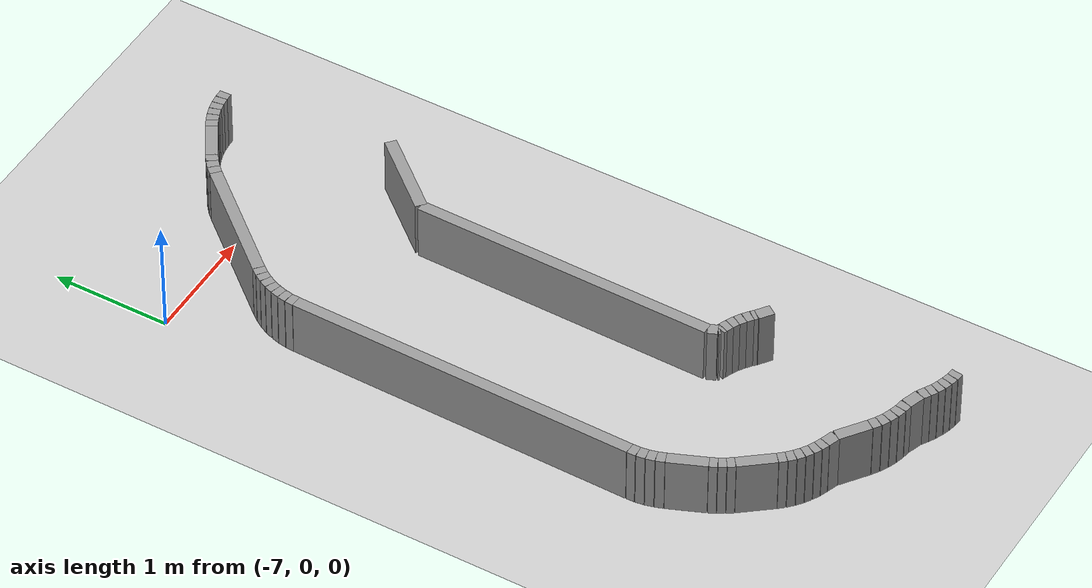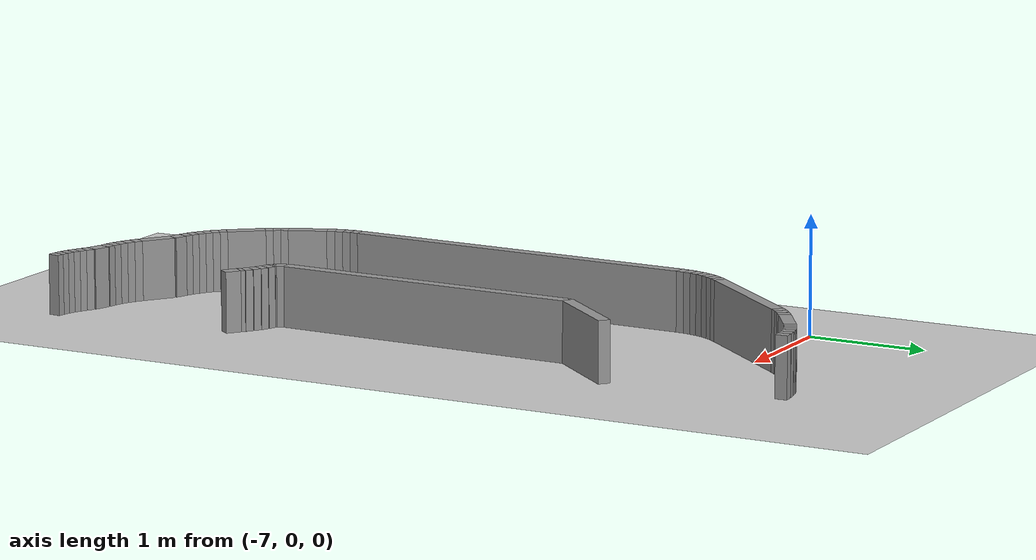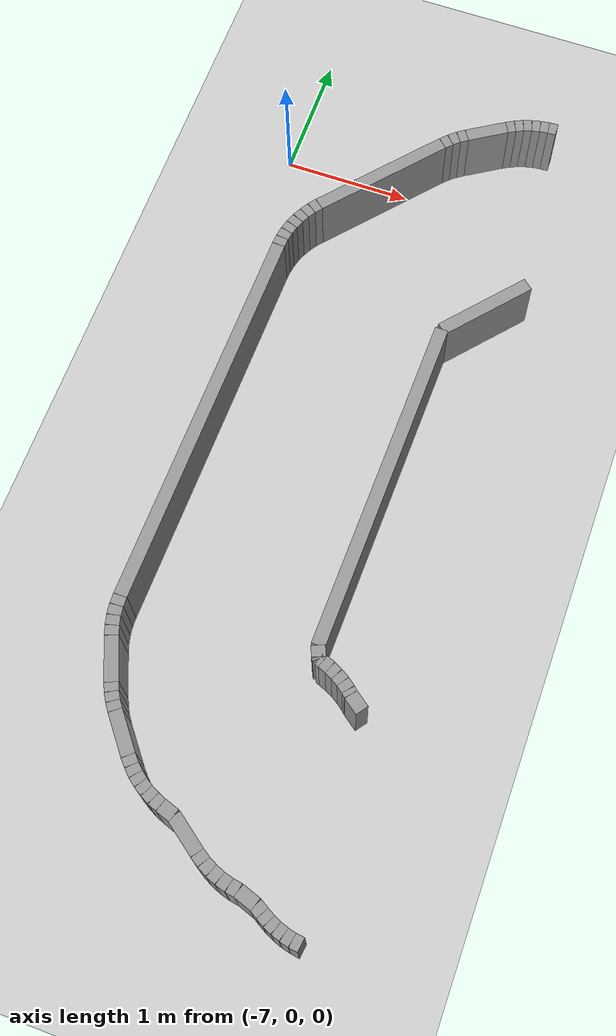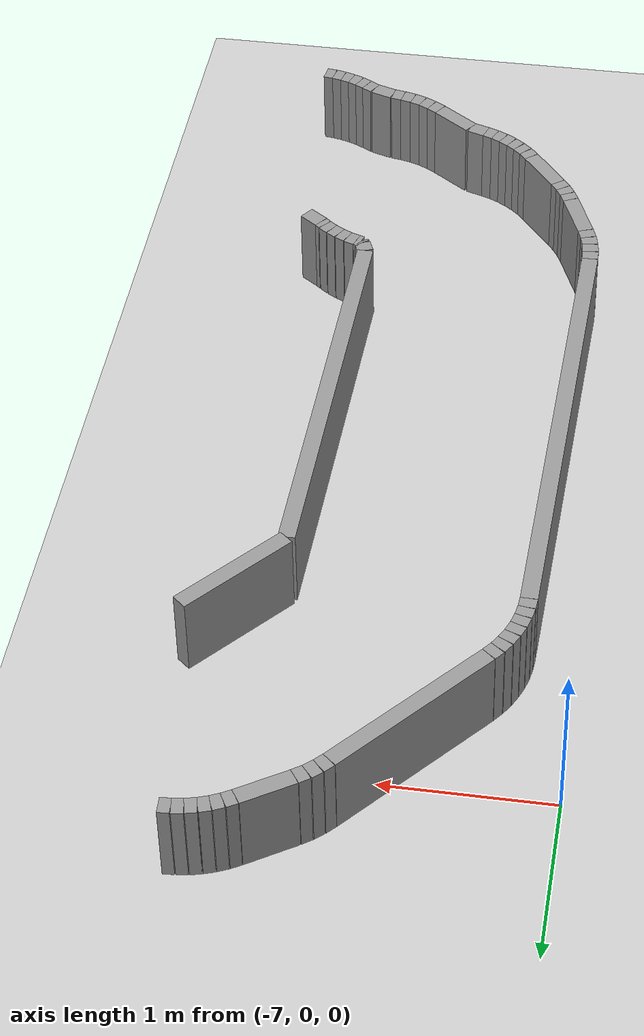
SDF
<sdf version="1.6">
 <world name="v1">
  <include><uri>model://ground_plane</uri></include>
  <include><uri>model://sun</uri></include>
  <model name="wall_2_outward">
   <static>true</static>
   <link name="link">
    <collision name="collision"><geometry><box><size>0.760842318069968 0.1 0.5</size></box></geometry></collision>
    <visual name="visual">
     <geometry><box><size>0.760842318069968 0.1 0.5</size></box></geometry>
     <material>
      <script><uri>file://media/materials/scripts/gazebo.material</uri><name>Gazebo/Gray</name></script>
     </material>
    </visual>
   </link>
   <pose>-5.057449112962152 -0.9986115172696286 0.25 0 0 -2.2769954192228936</pose>
  </model>
  <model name="wall_3_outward">
   <static>true</static>
   <link name="link">
    <collision name="collision"><geometry><box><size>2.577971331903464 0.1 0.5</size></box></geometry></collision>
    <visual name="visual">
     <geometry><box><size>2.577971331903464 0.1 0.5</size></box></geometry>
     <material>
      <script><uri>file://media/materials/scripts/gazebo.material</uri><name>Gazebo/Gray</name></script>
     </material>
    </visual>
   </link>
   <pose>-5.325982698667927 -2.5768525083504756 0.25 0 0 -1.5876014673099386</pose>
  </model>
  <model name="wall_4_outward">
   <static>true</static>
   <link name="link">
    <collision name="collision">
     <geometry><box><size>0.08024507159334099 0.1 0.5</size></box></geometry>
    </collision>
    <visual name="visual">
     <geometry><box><size>0.08024507159334099 0.1 0.5</size></box></geometry>
     <material>
      <script><uri>file://media/materials/scripts/gazebo.material</uri><name>Gazebo/Gray</name></script>
     </material>
    </visual>
   </link>
   <pose>-5.332211519798703 -3.9026923524831143 0.25 0 0 -1.1760052070951401</pose>
  </model>
  <model name="wall_5_outward">
   <static>true</static>
   <link name="link">
    <collision name="collision">
     <geometry><box><size>0.014808822380637146 0.1 0.5</size></box></geometry>
    </collision>
    <visual name="visual">
     <geometry><box><size>0.014808822380637146 0.1 0.5</size></box></geometry>
     <material>
      <script><uri>file://media/materials/scripts/gazebo.material</uri><name>Gazebo/Gray</name></script>
     </material>
    </visual>
   </link>
   <pose>-5.312154276260873 -3.9455104131231593 0.25 0 0 -0.8960553845713253</pose>
  </model>
  <model name="wall_6_outward">
   <static>true</static>
   <link name="link">
    <collision name="collision">
     <geometry><box><size>0.030450850701572784 0.1 0.5</size></box></geometry>
    </collision>
    <visual name="visual">
     <geometry><box><size>0.030450850701572784 0.1 0.5</size></box></geometry>
     <material>
      <script><uri>file://media/materials/scripts/gazebo.material</uri><name>Gazebo/Gray</name></script>
     </material>
    </visual>
   </link>
   <pose>-5.293084670524219 -3.9561069891193053 0.25 0 0 -0.3217505543966422</pose>
  </model>
  <model name="wall_7_outward">
   <static>true</static>
   <link name="link">
    <collision name="collision">
     <geometry><box><size>0.06488741144694966 0.1 0.5</size></box></geometry>
    </collision>
    <visual name="visual">
     <geometry><box><size>0.06488741144694966 0.1 0.5</size></box></geometry>
     <material>
      <script><uri>file://media/materials/scripts/gazebo.material</uri><name>Gazebo/Gray</name></script>
     </material>
    </visual>
   </link>
   <pose>-5.248370352090192 -3.9725968069884123 0.25 0 0 -0.36811531529672453</pose>
  </model>
  <model name="wall_8_outward">
   <static>true</static>
   <link name="link">
    <collision name="collision">
     <geometry><box><size>0.06488741144695048 0.1 0.5</size></box></geometry>
    </collision>
    <visual name="visual">
     <geometry><box><size>0.06488741144695048 0.1 0.5</size></box></geometry>
     <material>
      <script><uri>file://media/materials/scripts/gazebo.material</uri><name>Gazebo/Gray</name></script>
     </material>
    </visual>
   </link>
   <pose>-5.189041055683546 -3.9986997996898572 0.25 0 0 -0.4608448370968925</pose>
  </model>
  <model name="wall_9_outward">
   <static>true</static>
   <link name="link">
    <collision name="collision">
     <geometry><box><size>0.06488741144695012 0.1 0.5</size></box></geometry>
    </collision>
    <visual name="visual">
     <geometry><box><size>0.06488741144695012 0.1 0.5</size></box></geometry>
     <material>
      <script><uri>file://media/materials/scripts/gazebo.material</uri><name>Gazebo/Gray</name></script>
     </material>
    </visual>
   </link>
   <pose>-5.132383706475312 -4.0301843422587975 0.25 0 0 -0.5535743588970311</pose>
  </model>
  <model name="wall_10_outward">
   <static>true</static>
   <link name="link">
    <collision name="collision">
     <geometry><box><size>0.06488741144694986 0.1 0.5</size></box></geometry>
    </collision>
    <visual name="visual">
     <geometry><box><size>0.06488741144694986 0.1 0.5</size></box></geometry>
     <material>
      <script><uri>file://media/materials/scripts/gazebo.material</uri><name>Gazebo/Gray</name></script>
     </material>
    </visual>
   </link>
   <pose>-5.078885138654545 -4.066779900475693 0.25 0 0 -0.6463038806972127</pose>
  </model>
  <model name="wall_11_outward">
   <static>true</static>
   <link name="link">
    <collision name="collision">
     <geometry><box><size>0.03714716803559795 0.1 0.5</size></box></geometry>
    </collision>
    <visual name="visual">
     <geometry><box><size>0.03714716803559795 0.1 0.5</size></box></geometry>
     <material>
      <script><uri>file://media/materials/scripts/gazebo.material</uri><name>Gazebo/Gray</name></script>
     </material>
    </visual>
   </link>
   <pose>-5.039256728310514 -4.098829472672664 0.25 0 0 -0.73903340249737</pose>
  </model>
  <model name="wall_12_outward">
   <static>true</static>
   <link name="link">
    <collision name="collision">
     <geometry><box><size>0.1327258278376543 0.1 0.5</size></box></geometry>
    </collision>
    <visual name="visual">
     <geometry><box><size>0.1327258278376543 0.1 0.5</size></box></geometry>
     <material>
      <script><uri>file://media/materials/scripts/gazebo.material</uri><name>Gazebo/Gray</name></script>
     </material>
    </visual>
   </link>
   <pose>-4.971858538141976 -4.150372939886307 0.25 0 0 -0.628796286415434</pose>
  </model>
  <model name="wall_1_inward">
   <static>true</static>
   <link name="link">
    <collision name="collision">
     <geometry><box><size>0.0666736062099865 0.1 0.5</size></box></geometry>
    </collision>
    <visual name="visual">
     <geometry><box><size>0.0666736062099865 0.1 0.5</size></box></geometry>
     <material>
      <script><uri>file://media/materials/scripts/gazebo.material</uri><name>Gazebo/Gray</name></script>
     </material>
    </visual>
   </link>
   <pose>-5.0298239194526335 0.6985693890997671 0.25 0 0 -3.0989257118494504</pose>
  </model>
  <model name="wall_2_inward">
   <static>true</static>
   <link name="link">
    <collision name="collision">
     <geometry><box><size>0.06667360620998675 0.1 0.5</size></box></geometry>
    </collision>
    <visual name="visual">
     <geometry><box><size>0.06667360620998675 0.1 0.5</size></box></geometry>
     <material>
      <script><uri>file://media/materials/scripts/gazebo.material</uri><name>Gazebo/Gray</name></script>
     </material>
    </visual>
   </link>
   <pose>-5.0961504810890865 0.6925631686316247 0.25 0 0 -3.003641661707058</pose>
  </model>
  <model name="wall_3_inward">
   <static>true</static>
   <link name="link">
    <collision name="collision">
     <geometry><box><size>0.06667360620998646 0.1 0.5</size></box></geometry>
    </collision>
    <visual name="visual">
     <geometry><box><size>0.06667360620998646 0.1 0.5</size></box></geometry>
     <material>
      <script><uri>file://media/materials/scripts/gazebo.material</uri><name>Gazebo/Gray</name></script>
     </material>
    </visual>
   </link>
   <pose>-5.16160474794691 0.6802738882242612 0.25 0 0 -2.908357611564663</pose>
  </model>
  <model name="wall_4_inward">
   <static>true</static>
   <link name="link">
    <collision name="collision">
     <geometry><box><size>0.06667360620998651 0.1 0.5</size></box></geometry>
    </collision>
    <visual name="visual">
     <geometry><box><size>0.06667360620998651 0.1 0.5</size></box></geometry>
     <material>
      <script><uri>file://media/materials/scripts/gazebo.material</uri><name>Gazebo/Gray</name></script>
     </material>
    </visual>
   </link>
   <pose>-5.2255929069263445 0.6618130384808543 0.25 0 0 -2.813073561422271</pose>
  </model>
  <model name="wall_5_inward">
   <static>true</static>
   <link name="link">
    <collision name="collision">
     <geometry><box><size>0.06667360620998693 0.1 0.5</size></box></geometry>
    </collision>
    <visual name="visual">
     <geometry><box><size>0.06667360620998693 0.1 0.5</size></box></geometry>
     <material>
      <script><uri>file://media/materials/scripts/gazebo.material</uri><name>Gazebo/Gray</name></script>
     </material>
    </visual>
   </link>
   <pose>-5.287534445726883 0.6373480996121923 0.25 0 0 -2.717789511279879</pose>
  </model>
  <model name="wall_6_inward">
   <static>true</static>
   <link name="link">
    <collision name="collision">
     <geometry><box><size>0.06667360620998677 0.1 0.5</size></box></geometry>
    </collision>
    <visual name="visual">
     <geometry><box><size>0.06667360620998677 0.1 0.5</size></box></geometry>
     <material>
      <script><uri>file://media/materials/scripts/gazebo.material</uri><name>Gazebo/Gray</name></script>
     </material>
    </visual>
   </link>
   <pose>-5.346867419361212 0.6071010220255211 0.25 0 0 -2.6225054611374854</pose>
  </model>
  <model name="wall_7_inward">
   <static>true</static>
   <link name="link">
    <collision name="collision">
     <geometry><box><size>0.3259601202601327 0.1 0.5</size></box></geometry>
    </collision>
    <visual name="visual">
     <geometry><box><size>0.3259601202601327 0.1 0.5</size></box></geometry>
     <material>
      <script><uri>file://media/materials/scripts/gazebo.material</uri><name>Gazebo/Gray</name></script>
     </material>
    </visual>
   </link>
   <pose>-5.5133128445352115 0.5030630414124754 0.25 0 0 -2.5748634360662876</pose>
  </model>
  <model name="wall_8_inward">
   <static>true</static>
   <link name="link">
    <collision name="collision">
     <geometry><box><size>0.06947399153449611 0.1 0.5</size></box></geometry>
    </collision>
    <visual name="visual">
     <geometry><box><size>0.06947399153449611 0.1 0.5</size></box></geometry>
     <material>
      <script><uri>file://media/materials/scripts/gazebo.material</uri><name>Gazebo/Gray</name></script>
     </material>
    </visual>
   </link>
   <pose>-5.679157538358108 0.39548227432005384 0.25 0 0 -2.525218766592389</pose>
  </model>
  <model name="wall_9_inward">
   <static>true</static>
   <link name="link">
    <collision name="collision">
     <geometry><box><size>0.06947399153449553 0.1 0.5</size></box></geometry>
    </collision>
    <visual name="visual">
     <geometry><box><size>0.06947399153449553 0.1 0.5</size></box></geometry>
     <material>
      <script><uri>file://media/materials/scripts/gazebo.material</uri><name>Gazebo/Gray</name></script>
     </material>
    </visual>
   </link>
   <pose>-5.733716792710472 0.35260993661083045 0.25 0 0 -2.4259294276445846</pose>
  </model>
  <model name="wall_10_inward">
   <static>true</static>
   <link name="link">
    <collision name="collision">
     <geometry><box><size>0.06947399153449624 0.1 0.5</size></box></geometry>
    </collision>
    <visual name="visual">
     <geometry><box><size>0.06947399153449624 0.1 0.5</size></box></geometry>
     <material>
      <script><uri>file://media/materials/scripts/gazebo.material</uri><name>Gazebo/Gray</name></script>
     </material>
    </visual>
   </link>
   <pose>-5.78375755980565 0.3045404951259767 0.25 0 0 -2.3266400886967946</pose>
  </model>
  <model name="wall_11_inward">
   <static>true</static>
   <link name="link">
    <collision name="collision">
     <geometry><box><size>1.1171951485752163 0.1 0.5</size></box></geometry>
    </collision>
    <visual name="visual">
     <geometry><box><size>1.1171951485752163 0.1 0.5</size></box></geometry>
     <material>
      <script><uri>file://media/materials/scripts/gazebo.material</uri><name>Gazebo/Gray</name></script>
     </material>
    </visual>
   </link>
   <pose>-6.17008376637136 -0.1457373757420753 0.25 0 0 -2.276995419222893</pose>
  </model>
  <model name="wall_12_inward">
   <static>true</static>
   <link name="link">
    <collision name="collision">
     <geometry><box><size>0.06891153767258473 0.1 0.5</size></box></geometry>
    </collision>
    <visual name="visual">
     <geometry><box><size>0.06891153767258473 0.1 0.5</size></box></geometry>
     <material>
      <script><uri>file://media/materials/scripts/gazebo.material</uri><name>Gazebo/Gray</name></script>
     </material>
    </visual>
   </link>
   <pose>-6.5536262423137375 -0.5980213309596474 0.25 0 0 -2.2277529940862606</pose>
  </model>
  <model name="wall_13_inward">
   <static>true</static>
   <link name="link">
    <collision name="collision">
     <geometry><box><size>0.06891153767258393 0.1 0.5</size></box></geometry>
    </collision>
    <visual name="visual">
     <geometry><box><size>0.06891153767258393 0.1 0.5</size></box></geometry>
     <material>
      <script><uri>file://media/materials/scripts/gazebo.material</uri><name>Gazebo/Gray</name></script>
     </material>
    </visual>
   </link>
   <pose>-6.592926513766577 -0.6545260477894386 0.25 0 0 -2.129268143812971</pose>
  </model>
  <model name="wall_14_inward">
   <static>true</static>
   <link name="link">
    <collision name="collision">
     <geometry><box><size>0.0689115376725847 0.1 0.5</size></box></geometry>
    </collision>
    <visual name="visual">
     <geometry><box><size>0.0689115376725847 0.1 0.5</size></box></geometry>
     <material>
      <script><uri>file://media/materials/scripts/gazebo.material</uri><name>Gazebo/Gray</name></script>
     </material>
    </visual>
   </link>
   <pose>-6.626480480233616 -0.7146211864831015 0.25 0 0 -2.030783293539698</pose>
  </model>
  <model name="wall_15_inward">
   <static>true</static>
   <link name="link">
    <collision name="collision">
     <geometry><box><size>0.06891153767258452 0.1 0.5</size></box></geometry>
    </collision>
    <visual name="visual">
     <geometry><box><size>0.06891153767258452 0.1 0.5</size></box></geometry>
     <material>
      <script><uri>file://media/materials/scripts/gazebo.material</uri><name>Gazebo/Gray</name></script>
     </material>
    </visual>
   </link>
   <pose>-6.653962955843881 -0.7777243392935039 0.25 0 0 -1.932298443266417</pose>
  </model>
  <model name="wall_16_inward">
   <static>true</static>
   <link name="link">
    <collision name="collision">
     <geometry><box><size>0.06891153767258422 0.1 0.5</size></box></geometry>
    </collision>
    <visual name="visual">
     <geometry><box><size>0.06891153767258422 0.1 0.5</size></box></geometry>
     <material>
      <script><uri>file://media/materials/scripts/gazebo.material</uri><name>Gazebo/Gray</name></script>
     </material>
    </visual>
   </link>
   <pose>-6.67510759614666 -0.8432239465194095 0.25 0 0 -1.8338135929931247</pose>
  </model>
  <model name="wall_17_inward">
   <static>true</static>
   <link name="link">
    <collision name="collision">
     <geometry><box><size>0.06891153767258422 0.1 0.5</size></box></geometry>
    </collision>
    <visual name="visual">
     <geometry><box><size>0.06891153767258422 0.1 0.5</size></box></geometry>
     <material>
      <script><uri>file://media/materials/scripts/gazebo.material</uri><name>Gazebo/Gray</name></script>
     </material>
    </visual>
   </link>
   <pose>-6.6897094793697365 -0.9104852233926699 0.25 0 0 -1.735328742719865</pose>
  </model>
  <model name="wall_18_inward">
   <static>true</static>
   <link name="link">
    <collision name="collision">
     <geometry><box><size>0.06891153767258455 0.1 0.5</size></box></geometry>
    </collision>
    <visual name="visual">
     <geometry><box><size>0.06891153767258455 0.1 0.5</size></box></geometry>
     <material>
      <script><uri>file://media/materials/scripts/gazebo.material</uri><name>Gazebo/Gray</name></script>
     </material>
    </visual>
   </link>
   <pose>-6.697627092404121 -0.9788563120494957 0.25 0 0 -1.636843892446584</pose>
  </model>
  <model name="wall_19_inward">
   <static>true</static>
   <link name="link">
    <collision name="collision"><geometry><box><size>2.975420138400626 0.1 0.5</size></box></geometry></collision>
    <visual name="visual">
     <geometry><box><size>2.975420138400626 0.1 0.5</size></box></geometry>
     <material>
      <script><uri>file://media/materials/scripts/gazebo.material</uri><name>Gazebo/Gray</name></script>
     </material>
    </visual>
   </link>
   <pose>-6.724901157864517 -2.500736955330008 0.25 0 0 -1.5876014673099386</pose>
  </model>
  <model name="wall_20_inward">
   <static>true</static>
   <link name="link">
    <collision name="collision">
     <geometry><box><size>0.07199757214387116 0.1 0.5</size></box></geometry>
    </collision>
    <visual name="visual">
     <geometry><box><size>0.07199757214387116 0.1 0.5</size></box></geometry>
     <material>
      <script><uri>file://media/materials/scripts/gazebo.material</uri><name>Gazebo/Gray</name></script>
     </material>
    </visual>
   </link>
   <pose>-6.74865425127275 -4.0242141400809635 0.25 0 0 -1.5361519347830868</pose>
  </model>
  <model name="wall_21_inward">
   <static>true</static>
   <link name="link">
    <collision name="collision">
     <geometry><box><size>0.07199757214387172 0.1 0.5</size></box></geometry>
    </collision>
    <visual name="visual">
     <geometry><box><size>0.07199757214387172 0.1 0.5</size></box></geometry>
     <material>
      <script><uri>file://media/materials/scripts/gazebo.material</uri><name>Gazebo/Gray</name></script>
     </material>
    </visual>
   </link>
   <pose>-6.742471544357112 -4.095850131231122 0.25 0 0 -1.433252869729387</pose>
  </model>
  <model name="wall_22_inward">
   <static>true</static>
   <link name="link">
    <collision name="collision">
     <geometry><box><size>0.07199757214387183 0.1 0.5</size></box></geometry>
    </collision>
    <visual name="visual">
     <geometry><box><size>0.07199757214387183 0.1 0.5</size></box></geometry>
     <material>
      <script><uri>file://media/materials/scripts/gazebo.material</uri><name>Gazebo/Gray</name></script>
     </material>
    </visual>
   </link>
   <pose>-6.728963265208486 -4.1664721355025485 0.25 0 0 -1.330353804675687</pose>
  </model>
  <model name="wall_23_inward">
   <static>true</static>
   <link name="link">
    <collision name="collision">
     <geometry><box><size>0.07199757214387119 0.1 0.5</size></box></geometry>
    </collision>
    <visual name="visual">
     <geometry><box><size>0.07199757214387119 0.1 0.5</size></box></geometry>
     <material>
      <script><uri>file://media/materials/scripts/gazebo.material</uri><name>Gazebo/Gray</name></script>
     </material>
    </visual>
   </link>
   <pose>-6.708272316268788 -4.235333051302769 0.25 0 0 -1.2274547396219742</pose>
  </model>
  <model name="wall_24_inward">
   <static>true</static>
   <link name="link">
    <collision name="collision">
     <geometry><box><size>0.32499999999999984 0.1 0.5</size></box></geometry>
    </collision>
    <visual name="visual">
     <geometry><box><size>0.32499999999999984 0.1 0.5</size></box></geometry>
     <material>
      <script><uri>file://media/materials/scripts/gazebo.material</uri><name>Gazebo/Gray</name></script>
     </material>
    </visual>
   </link>
   <pose>-6.6336538461538455 -4.419230769230769 0.25 0 0 -1.1760052070951348</pose>
  </model>
  <model name="wall_25_inward">
   <static>true</static>
   <link name="link">
    <collision name="collision">
     <geometry><box><size>0.06529792700151416 0.1 0.5</size></box></geometry>
    </collision>
    <visual name="visual">
     <geometry><box><size>0.06529792700151416 0.1 0.5</size></box></geometry>
     <material>
      <script><uri>file://media/materials/scripts/gazebo.material</uri><name>Gazebo/Gray</name></script>
     </material>
    </visual>
   </link>
   <pose>-6.557204563912803 -4.598749785857912 0.25 0 0 -1.129346903341177</pose>
  </model>
  <model name="wall_26_inward">
   <static>true</static>
   <link name="link">
    <collision name="collision">
     <geometry><box><size>0.06529792700151546 0.1 0.5</size></box></geometry>
    </collision>
    <visual name="visual">
     <geometry><box><size>0.06529792700151546 0.1 0.5</size></box></geometry>
     <material>
      <script><uri>file://media/materials/scripts/gazebo.material</uri><name>Gazebo/Gray</name></script>
     </material>
    </visual>
   </link>
   <pose>-6.5266160720999 -4.656359575391784 0.25 0 0 -1.0360302958332357</pose>
  </model>
  <model name="wall_27_inward">
   <static>true</static>
   <link name="link">
    <collision name="collision">
     <geometry><box><size>0.0652979270015141 0.1 0.5</size></box></geometry>
    </collision>
    <visual name="visual">
     <geometry><box><size>0.0652979270015141 0.1 0.5</size></box></geometry>
     <material>
      <script><uri>file://media/materials/scripts/gazebo.material</uri><name>Gazebo/Gray</name></script>
     </material>
    </visual>
   </link>
   <pose>-6.490792514569081 -4.710868440793306 0.25 0 0 -0.9427136883253175</pose>
  </model>
  <model name="wall_28_inward">
   <static>true</static>
   <link name="link">
    <collision name="collision">
     <geometry><box><size>0.32015621187164256 0.1 0.5</size></box></geometry>
    </collision>
    <visual name="visual">
     <geometry><box><size>0.32015621187164256 0.1 0.5</size></box></geometry>
     <material>
      <script><uri>file://media/materials/scripts/gazebo.material</uri><name>Gazebo/Gray</name></script>
     </material>
    </visual>
   </link>
   <pose>-6.371608166610121 -4.862286533288097 0.25 0 0 -0.8960553845713435</pose>
  </model>
  <model name="wall_29_inward">
   <static>true</static>
   <link name="link">
    <collision name="collision">
     <geometry><box><size>0.06697665547709004 0.1 0.5</size></box></geometry>
    </collision>
    <visual name="visual">
     <geometry><box><size>0.06697665547709004 0.1 0.5</size></box></geometry>
     <material>
      <script><uri>file://media/materials/scripts/gazebo.material</uri><name>Gazebo/Gray</name></script>
     </material>
    </visual>
   </link>
   <pose>-6.249461099942485 -5.012405759644486 0.25 0 0 -0.8481966487234509</pose>
  </model>
  <model name="wall_30_inward">
   <static>true</static>
   <link name="link">
    <collision name="collision">
     <geometry><box><size>0.06697665547709024 0.1 0.5</size></box></geometry>
    </collision>
    <visual name="visual">
     <geometry><box><size>0.06697665547709024 0.1 0.5</size></box></geometry>
     <material>
      <script><uri>file://media/materials/scripts/gazebo.material</uri><name>Gazebo/Gray</name></script>
     </material>
    </visual>
   </link>
   <pose>-6.202867663905785 -5.060412605348363 0.25 0 0 -0.7524791770276634</pose>
  </model>
  <model name="wall_31_inward">
   <static>true</static>
   <link name="link">
    <collision name="collision">
     <geometry><box><size>0.06697665547709035 0.1 0.5</size></box></geometry>
    </collision>
    <visual name="visual">
     <geometry><box><size>0.06697665547709035 0.1 0.5</size></box></geometry>
     <material>
      <script><uri>file://media/materials/scripts/gazebo.material</uri><name>Gazebo/Gray</name></script>
     </material>
    </visual>
   </link>
   <pose>-6.151899425105242 -5.103746704504947 0.25 0 0 -0.6567617053318824</pose>
  </model>
  <model name="wall_32_inward">
   <static>true</static>
   <link name="link">
    <collision name="collision">
     <geometry><box><size>0.06697665547709071 0.1 0.5</size></box></geometry>
    </collision>
    <visual name="visual">
     <geometry><box><size>0.06697665547709071 0.1 0.5</size></box></geometry>
     <material>
      <script><uri>file://media/materials/scripts/gazebo.material</uri><name>Gazebo/Gray</name></script>
     </material>
    </visual>
   </link>
   <pose>-6.097022989693175 -5.142011340301034 0.25 0 0 -0.5610442336361087</pose>
  </model>
  <model name="wall_33_inward">
   <static>true</static>
   <link name="link">
    <collision name="collision">
     <geometry><box><size>0.06697665547709018 0.1 0.5</size></box></geometry>
    </collision>
    <visual name="visual">
     <geometry><box><size>0.06697665547709018 0.1 0.5</size></box></geometry>
     <material>
      <script><uri>file://media/materials/scripts/gazebo.material</uri><name>Gazebo/Gray</name></script>
     </material>
    </visual>
   </link>
   <pose>-6.0387407427427835 -5.174856206057427 0.25 0 0 -0.4653267619403183</pose>
  </model>
  <model name="wall_34_inward">
   <static>true</static>
   <link name="link">
    <collision name="collision">
     <geometry><box><size>0.06697665547709003 0.1 0.5</size></box></geometry>
    </collision>
    <visual name="visual">
     <geometry><box><size>0.06697665547709003 0.1 0.5</size></box></geometry>
     <material>
      <script><uri>file://media/materials/scripts/gazebo.material</uri><name>Gazebo/Gray</name></script>
     </material>
    </visual>
   </link>
   <pose>-5.977586248992384 -5.201980612231095 0.25 0 0 -0.36960929024453665</pose>
  </model>
  <model name="wall_35_inward">
   <static>true</static>
   <link name="link">
    <collision name="collision">
     <geometry><box><size>0.11060857380787405 0.1 0.5</size></box></geometry>
    </collision>
    <visual name="visual">
     <geometry><box><size>0.11060857380787405 0.1 0.5</size></box></geometry>
     <material>
      <script><uri>file://media/materials/scripts/gazebo.material</uri><name>Gazebo/Gray</name></script>
     </material>
    </visual>
   </link>
   <pose>-5.893893182915428 -5.231567059734146 0.25 0 0 -0.32175055439663713</pose>
  </model>
  <model name="wall_36_inward">
   <static>true</static>
   <link name="link">
    <collision name="collision">
     <geometry><box><size>0.2840317697020455 0.1 0.5</size></box></geometry>
    </collision>
    <visual name="visual">
     <geometry><box><size>0.2840317697020455 0.1 0.5</size></box></geometry>
     <material>
      <script><uri>file://media/materials/scripts/gazebo.material</uri><name>Gazebo/Gray</name></script>
     </material>
    </visual>
   </link>
   <pose>-5.726573558995801 -5.332585534922582 0.25 0 0 -0.6287962864154334</pose>
  </model>
  <model name="wall_37_inward">
   <static>true</static>
   <link name="link">
    <collision name="collision">
     <geometry><box><size>0.07332600045952478 0.1 0.5</size></box></geometry>
    </collision>
    <visual name="visual">
     <geometry><box><size>0.07332600045952478 0.1 0.5</size></box></geometry>
     <material>
      <script><uri>file://media/materials/scripts/gazebo.material</uri><name>Gazebo/Gray</name></script>
     </material>
    </visual>
   </link>
   <pose>-5.5809807569801775 -5.436096824104143 0.25 0 0 -0.5763965958808195</pose>
  </model>
  <model name="wall_38_inward">
   <static>true</static>
   <link name="link">
    <collision name="collision">
     <geometry><box><size>0.07332600045952452 0.1 0.5</size></box></geometry>
    </collision>
    <visual name="visual">
     <geometry><box><size>0.07332600045952452 0.1 0.5</size></box></geometry>
     <material>
      <script><uri>file://media/materials/scripts/gazebo.material</uri><name>Gazebo/Gray</name></script>
     </material>
    </visual>
   </link>
   <pose>-5.5175803193423665 -5.472734747047692 0.25 0 0 -0.4715972148115691</pose>
  </model>
  <model name="wall_39_inward">
   <static>true</static>
   <link name="link">
    <collision name="collision">
     <geometry><box><size>0.0733260004595256 0.1 0.5</size></box></geometry>
    </collision>
    <visual name="visual">
     <geometry><box><size>0.0733260004595256 0.1 0.5</size></box></geometry>
     <material>
      <script><uri>file://media/materials/scripts/gazebo.material</uri><name>Gazebo/Gray</name></script>
     </material>
    </visual>
   </link>
   <pose>-5.450695116710223 -5.502539487595808 0.25 0 0 -0.3667978337423357</pose>
  </model>
  <model name="wall_40_inward">
   <static>true</static>
   <link name="link">
    <collision name="collision">
     <geometry><box><size>0.07332600045952489 0.1 0.5</size></box></geometry>
    </collision>
    <visual name="visual">
     <geometry><box><size>0.07332600045952489 0.1 0.5</size></box></geometry>
     <material>
      <script><uri>file://media/materials/scripts/gazebo.material</uri><name>Gazebo/Gray</name></script>
     </material>
    </visual>
   </link>
   <pose>-5.3810590711770745 -5.525184002445739 0.25 0 0 -0.2619984526731043</pose>
  </model>
  <model name="wall_41_inward">
   <static>true</static>
   <link name="link">
    <collision name="collision">
     <geometry><box><size>0.06967645378143385 0.1 0.5</size></box></geometry>
    </collision>
    <visual name="visual">
     <geometry><box><size>0.06967645378143385 0.1 0.5</size></box></geometry>
     <material>
      <script><uri>file://media/materials/scripts/gazebo.material</uri><name>Gazebo/Gray</name></script>
     </material>
    </visual>
   </link>
   <pose>-5.311238562699199 -5.540134143757942 0.25 0 0 -0.15719907160384797</pose>
  </model>
  <model name="wall_42_inward">
   <static>true</static>
   <link name="link">
    <collision name="collision">
     <geometry><box><size>0.13974432931808223 0.1 0.5</size></box></geometry>
    </collision>
    <visual name="visual">
     <geometry><box><size>0.13974432931808223 0.1 0.5</size></box></geometry>
     <material>
      <script><uri>file://media/materials/scripts/gazebo.material</uri><name>Gazebo/Gray</name></script>
     </material>
    </visual>
   </link>
   <pose>-5.210543347757117 -5.567683671453583 0.25 0 0 -0.32175055439664824</pose>
  </model>
  <model name="wall_43_inward">
   <static>true</static>
   <link name="link">
    <collision name="collision">
     <geometry><box><size>0.0689332373186198 0.1 0.5</size></box></geometry>
    </collision>
    <visual name="visual">
     <geometry><box><size>0.0689332373186198 0.1 0.5</size></box></geometry>
     <material>
      <script><uri>file://media/materials/scripts/gazebo.material</uri><name>Gazebo/Gray</name></script>
     </material>
    </visual>
   </link>
   <pose>-5.114701910472859 -5.607512118994626 0.25 0 0 -0.5404195002705842</pose>
  </model>
  <model name="wall_44_inward">
   <static>true</static>
   <link name="link">
    <collision name="collision">
     <geometry><box><size>0.0630276317673591 0.1 0.5</size></box></geometry>
    </collision>
    <visual name="visual">
     <geometry><box><size>0.0630276317673591 0.1 0.5</size></box></geometry>
     <material>
      <script><uri>file://media/materials/scripts/gazebo.material</uri><name>Gazebo/Gray</name></script>
     </material>
    </visual>
   </link>
   <pose>-5.057421615559823 -5.640225770686702 0.25 0 0 -0.4953845419146991</pose>
  </model>
  <model name="wall_45_inward">
   <static>true</static>
   <link name="link">
    <collision name="collision">
     <geometry><box><size>0.06302763176735839 0.1 0.5</size></box></geometry>
    </collision>
    <visual name="visual">
     <geometry><box><size>0.06302763176735839 0.1 0.5</size></box></geometry>
     <material>
      <script><uri>file://media/materials/scripts/gazebo.material</uri><name>Gazebo/Gray</name></script>
     </material>
    </visual>
   </link>
   <pose>-5.000735686743415 -5.66763264036663 0.25 0 0 -0.40531462520295414</pose>
  </model>
  <model name="wall_46_inward">
   <static>true</static>
   <link name="link">
    <collision name="collision">
     <geometry><box><size>0.06302763176735862 0.1 0.5</size></box></geometry>
    </collision>
    <visual name="visual">
     <geometry><box><size>0.06302763176735862 0.1 0.5</size></box></geometry>
     <material>
      <script><uri>file://media/materials/scripts/gazebo.material</uri><name>Gazebo/Gray</name></script>
     </material>
    </visual>
   </link>
   <pose>-4.94181433924676 -5.689829618553086 0.25 0 0 -0.31524470849116654</pose>
  </model>
  <model name="wall_47_inward">
   <static>true</static>
   <link name="link">
    <collision name="collision">
     <geometry><box><size>0.0630276317673591 0.1 0.5</size></box></geometry>
    </collision>
    <visual name="visual">
     <geometry><box><size>0.0630276317673591 0.1 0.5</size></box></geometry>
     <material>
      <script><uri>file://media/materials/scripts/gazebo.material</uri><name>Gazebo/Gray</name></script>
     </material>
    </visual>
   </link>
   <pose>-4.881135254730927 -5.706636751971722 0.25 0 0 -0.2251747917794036</pose>
  </model>
  <model name="wall_48_inward">
   <static>true</static>
   <link name="link">
    <collision name="collision">
     <geometry><box><size>0.06302763176735811 0.1 0.5</size></box></geometry>
    </collision>
    <visual name="visual">
     <geometry><box><size>0.06302763176735811 0.1 0.5</size></box></geometry>
     <material>
      <script><uri>file://media/materials/scripts/gazebo.material</uri><name>Gazebo/Gray</name></script>
     </material>
    </visual>
   </link>
   <pose>-4.819190365018847 -5.71791778339574 0.25 0 0 -0.1351048750676532</pose>
  </model>
 </world>
</sdf>
